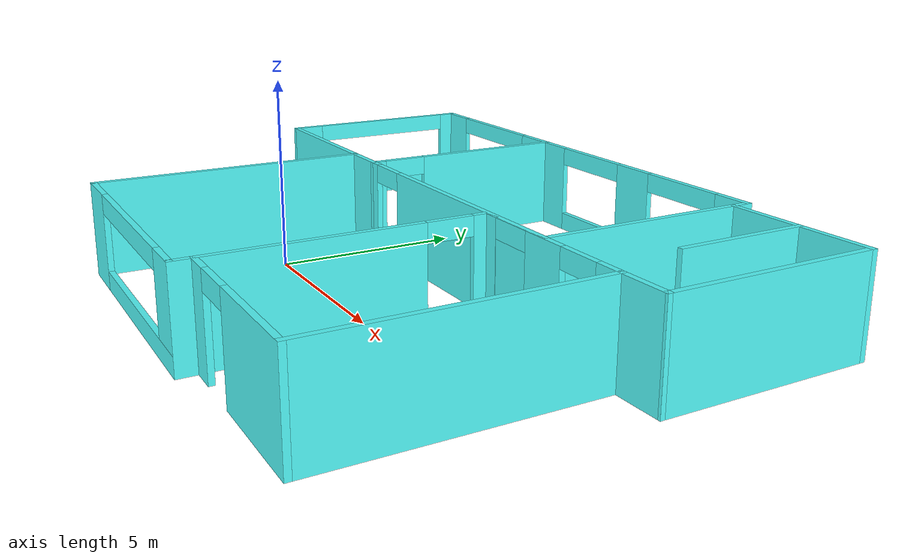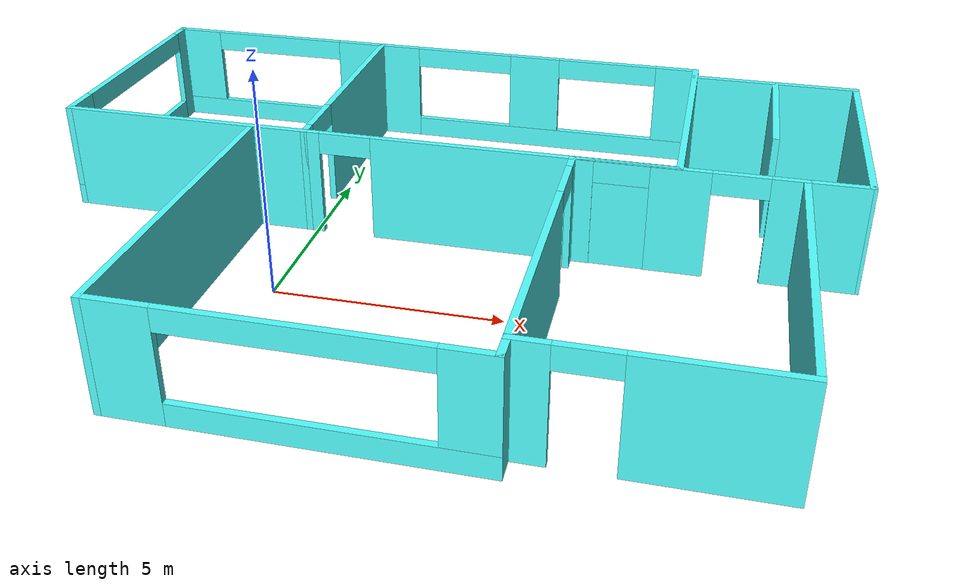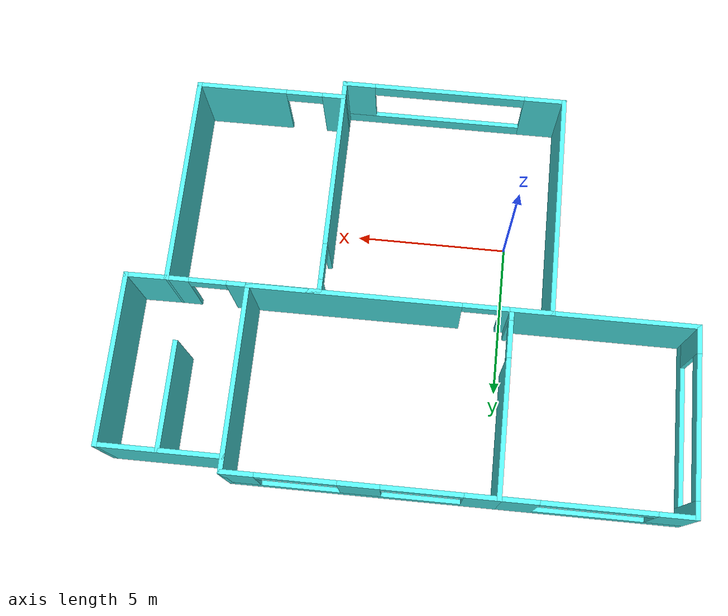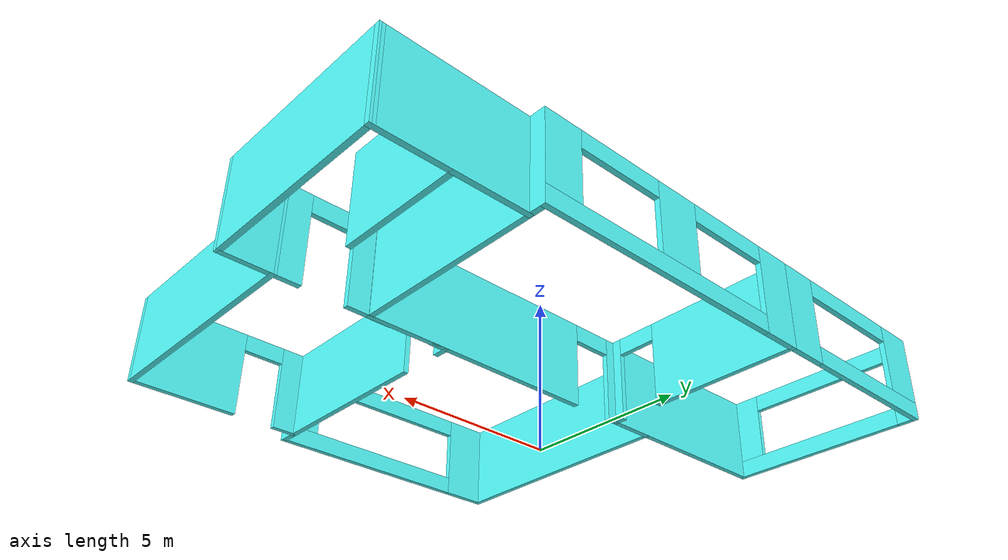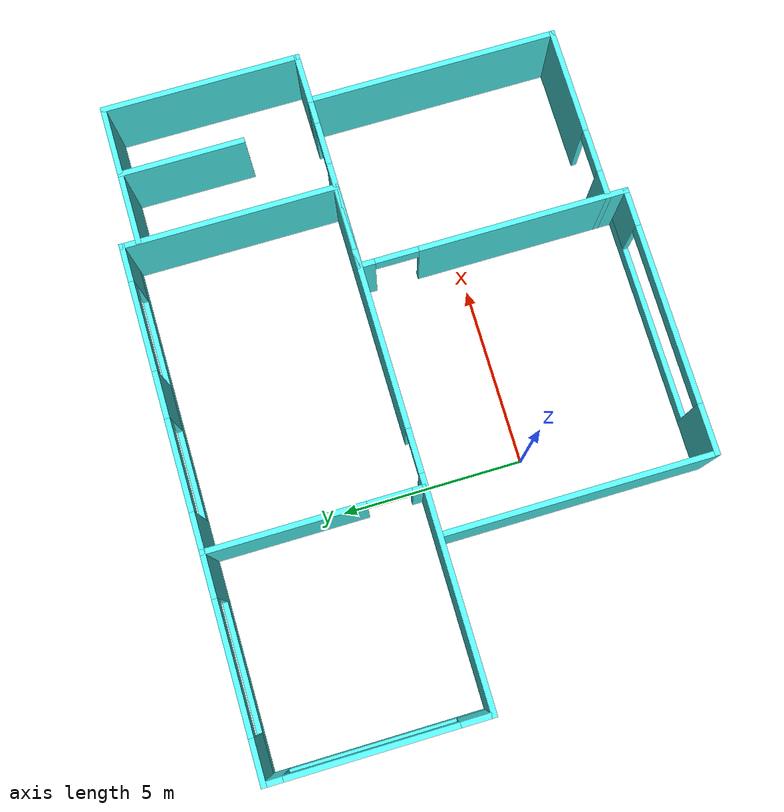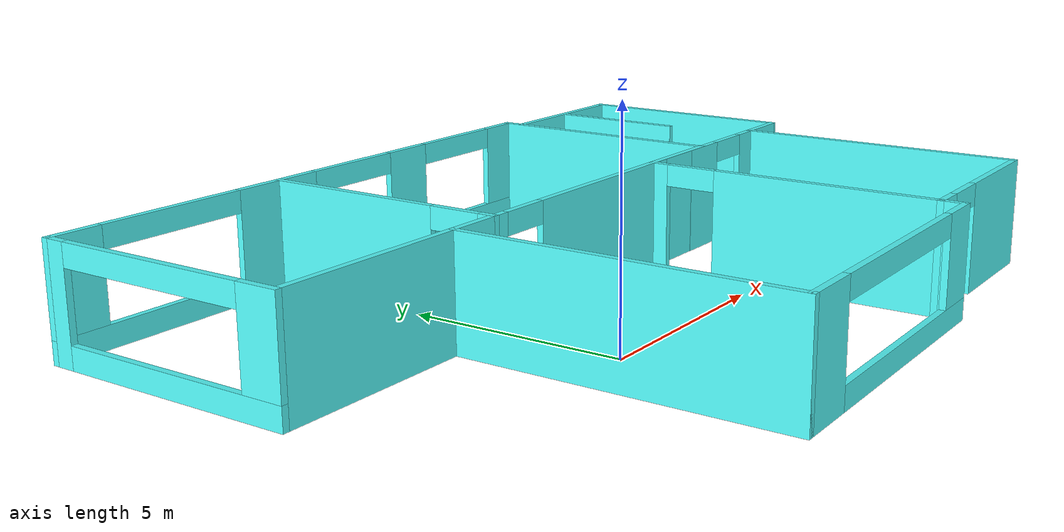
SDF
<?xml version='1.0'?>
<sdf version='1.6'>
  <model name='building'>
    <pose frame=''>2.97222 2.05646 0 0 -0 0</pose>
    <link name='Wall_1'>
      <pose frame=''>-9.03865 3.68146 0 0 0 -1.5708</pose>
      <visual name='Wall_1_Visual_0'>
        <pose frame=''>-2.71577 0 1.25 0 -0 0</pose>
        <geometry>
          <box>
            <size>0.568462 0.15 2.5</size>
          </box>
        </geometry>
        <material>
          <script>
            <uri>file://media/materials/scripts/gazebo.material</uri>
            <name>Gazebo/Grey</name>
          </script>
          <ambient>0.333333 1 1 1</ambient>
        </material>
        <meta>
          <layer>0</layer>
        </meta>
      </visual>
      <collision name='Wall_1_Collision_0'>
        <geometry>
          <box>
            <size>0.568462 0.15 2.5</size>
          </box>
        </geometry>
        <pose frame=''>-2.71577 0 1.25 0 -0 0</pose>
      </collision>
      <visual name='Wall_1_Visual_1'>
        <pose frame=''>0.284231 0 0.25 0 -0 0</pose>
        <geometry>
          <box>
            <size>5.43154 0.15 0.5</size>
          </box>
        </geometry>
        <material>
          <script>
            <uri>file://media/materials/scripts/gazebo.material</uri>
            <name>Gazebo/Grey</name>
          </script>
          <ambient>0.333333 1 1 1</ambient>
        </material>
        <meta>
          <layer>0</layer>
        </meta>
      </visual>
      <collision name='Wall_1_Collision_1'>
        <geometry>
          <box>
            <size>5.43154 0.15 0.5</size>
          </box>
        </geometry>
        <pose frame=''>0.284231 0 0.25 0 -0 0</pose>
      </collision>
      <visual name='Wall_1_Visual_2'>
        <pose frame=''>2.53423 0 1.5 0 -0 0</pose>
        <geometry>
          <box>
            <size>0.931538 0.15 2</size>
          </box>
        </geometry>
        <material>
          <script>
            <uri>file://media/materials/scripts/gazebo.material</uri>
            <name>Gazebo/Grey</name>
          </script>
          <ambient>0.333333 1 1 1</ambient>
        </material>
        <meta>
          <layer>0</layer>
        </meta>
      </visual>
      <collision name='Wall_1_Collision_2'>
        <geometry>
          <box>
            <size>0.931538 0.15 2</size>
          </box>
        </geometry>
        <pose frame=''>2.53423 0 1.5 0 -0 0</pose>
      </collision>
      <visual name='Wall_1_Visual_3'>
        <pose frame=''>-0.181538 0 2.25 0 -0 0</pose>
        <geometry>
          <box>
            <size>4.5 0.15 0.5</size>
          </box>
        </geometry>
        <material>
          <script>
            <uri>file://media/materials/scripts/gazebo.material</uri>
            <name>Gazebo/Grey</name>
          </script>
          <ambient>0.333333 1 1 1</ambient>
        </material>
        <meta>
          <layer>0</layer>
        </meta>
      </visual>
      <collision name='Wall_1_Collision_3'>
        <geometry>
          <box>
            <size>4.5 0.15 0.5</size>
          </box>
        </geometry>
        <pose frame=''>-0.181538 0 2.25 0 -0 0</pose>
      </collision>
    </link>
    <link name='Wall_12'>
      <collision name='Wall_12_Collision'>
        <geometry>
          <box>
            <size>7.5 0.15 2.5</size>
          </box>
        </geometry>
        <pose frame=''>0 0 1.25 0 -0 0</pose>
      </collision>
      <visual name='Wall_12_Visual'>
        <pose frame=''>0 0 1.25 0 -0 0</pose>
        <geometry>
          <box>
            <size>7.5 0.15 2.5</size>
          </box>
        </geometry>
        <material>
          <script>
            <uri>file://media/materials/scripts/gazebo.material</uri>
            <name>Gazebo/Grey</name>
          </script>
          <ambient>0.333333 1 1 1</ambient>
        </material>
        <meta>
          <layer>0</layer>
        </meta>
      </visual>
      <pose frame=''>-4.45822 -2.93146 0 0 0 -1.5708</pose>
    </link>
    <link name='Wall_14'>
      <pose frame=''>-0.783219 -6.60646 0 0 -0 0</pose>
      <visual name='Wall_14_Visual_0'>
        <pose frame=''>-3.04444 0 1.25 0 -0 0</pose>
        <geometry>
          <box>
            <size>1.41111 0.15 2.5</size>
          </box>
        </geometry>
        <material>
          <script>
            <uri>file://media/materials/scripts/gazebo.material</uri>
            <name>Gazebo/Grey</name>
          </script>
          <ambient>0.333333 1 1 1</ambient>
        </material>
        <meta>
          <layer>0</layer>
        </meta>
      </visual>
      <collision name='Wall_14_Collision_0'>
        <geometry>
          <box>
            <size>1.41111 0.15 2.5</size>
          </box>
        </geometry>
        <pose frame=''>-3.04444 0 1.25 0 -0 0</pose>
      </collision>
      <visual name='Wall_14_Visual_1'>
        <pose frame=''>0.705557 0 0.25 0 -0 0</pose>
        <geometry>
          <box>
            <size>6.08889 0.15 0.5</size>
          </box>
        </geometry>
        <material>
          <script>
            <uri>file://media/materials/scripts/gazebo.material</uri>
            <name>Gazebo/Grey</name>
          </script>
          <ambient>0.333333 1 1 1</ambient>
        </material>
        <meta>
          <layer>0</layer>
        </meta>
      </visual>
      <collision name='Wall_14_Collision_1'>
        <geometry>
          <box>
            <size>6.08889 0.15 0.5</size>
          </box>
        </geometry>
        <pose frame=''>0.705557 0 0.25 0 -0 0</pose>
      </collision>
      <visual name='Wall_14_Visual_2'>
        <pose frame=''>3.20556 0 1.5 0 -0 0</pose>
        <geometry>
          <box>
            <size>1.08889 0.15 2</size>
          </box>
        </geometry>
        <material>
          <script>
            <uri>file://media/materials/scripts/gazebo.material</uri>
            <name>Gazebo/Grey</name>
          </script>
          <ambient>0.333333 1 1 1</ambient>
        </material>
        <meta>
          <layer>0</layer>
        </meta>
      </visual>
      <collision name='Wall_14_Collision_2'>
        <geometry>
          <box>
            <size>1.08889 0.15 2</size>
          </box>
        </geometry>
        <pose frame=''>3.20556 0 1.5 0 -0 0</pose>
      </collision>
      <visual name='Wall_14_Visual_3'>
        <pose frame=''>0.161115 0 2.25 0 -0 0</pose>
        <geometry>
          <box>
            <size>5 0.15 0.5</size>
          </box>
        </geometry>
        <material>
          <script>
            <uri>file://media/materials/scripts/gazebo.material</uri>
            <name>Gazebo/Grey</name>
          </script>
          <ambient>0.333333 1 1 1</ambient>
        </material>
        <meta>
          <layer>0</layer>
        </meta>
      </visual>
      <collision name='Wall_14_Collision_3'>
        <geometry>
          <box>
            <size>5 0.15 0.5</size>
          </box>
        </geometry>
        <pose frame=''>0.161115 0 2.25 0 -0 0</pose>
      </collision>
    </link>
    <link name='Wall_15'>
      <pose frame=''>2.89178 -2.93146 0 0 -0 1.5708</pose>
      <visual name='Wall_15_Visual_0'>
        <pose frame=''>-0.841152 0 1.25 0 -0 0</pose>
        <geometry>
          <box>
            <size>5.81769 0.15 2.5</size>
          </box>
        </geometry>
        <material>
          <script>
            <uri>file://media/materials/scripts/gazebo.material</uri>
            <name>Gazebo/Grey</name>
          </script>
          <ambient>0.333333 1 1 1</ambient>
        </material>
        <meta>
          <layer>0</layer>
        </meta>
      </visual>
      <collision name='Wall_15_Collision_0'>
        <geometry>
          <box>
            <size>5.81769 0.15 2.5</size>
          </box>
        </geometry>
        <pose frame=''>-0.841152 0 1.25 0 -0 0</pose>
      </collision>
      <visual name='Wall_15_Visual_1'>
        <pose frame=''>3.50885 0 1.25 0 -0 0</pose>
        <geometry>
          <box>
            <size>0.482305 0.15 2.5</size>
          </box>
        </geometry>
        <material>
          <script>
            <uri>file://media/materials/scripts/gazebo.material</uri>
            <name>Gazebo/Grey</name>
          </script>
          <ambient>0.333333 1 1 1</ambient>
        </material>
        <meta>
          <layer>0</layer>
        </meta>
      </visual>
      <collision name='Wall_15_Collision_1'>
        <geometry>
          <box>
            <size>0.482305 0.15 2.5</size>
          </box>
        </geometry>
        <pose frame=''>3.50885 0 1.25 0 -0 0</pose>
      </collision>
      <visual name='Wall_15_Visual_2'>
        <pose frame=''>2.6677 0 2.25 0 -0 0</pose>
        <geometry>
          <box>
            <size>1.2 0.15 0.5</size>
          </box>
        </geometry>
        <material>
          <script>
            <uri>file://media/materials/scripts/gazebo.material</uri>
            <name>Gazebo/Grey</name>
          </script>
          <ambient>0.333333 1 1 1</ambient>
        </material>
        <meta>
          <layer>0</layer>
        </meta>
      </visual>
      <collision name='Wall_15_Collision_2'>
        <geometry>
          <box>
            <size>1.2 0.15 0.5</size>
          </box>
        </geometry>
        <pose frame=''>2.6677 0 2.25 0 -0 0</pose>
      </collision>
    </link>
    <link name='Wall_17'>
      <pose frame=''>5.31678 0.743537 0 0 -0 0</pose>
      <visual name='Wall_17_Visual_0'>
        <pose frame=''>-2.23135 0 1.25 0 -0 0</pose>
        <geometry>
          <box>
            <size>0.537309 0.15 2.5</size>
          </box>
        </geometry>
        <material>
          <script>
            <uri>file://media/materials/scripts/gazebo.material</uri>
            <name>Gazebo/Grey</name>
          </script>
          <ambient>0.333333 1 1 1</ambient>
        </material>
        <meta>
          <layer>0</layer>
        </meta>
      </visual>
      <collision name='Wall_17_Collision_0'>
        <geometry>
          <box>
            <size>0.537309 0.15 2.5</size>
          </box>
        </geometry>
        <pose frame=''>-2.23135 0 1.25 0 -0 0</pose>
      </collision>
      <visual name='Wall_17_Visual_1'>
        <pose frame=''>-0.120616 0 1.25 0 -0 0</pose>
        <geometry>
          <box>
            <size>1.28415 0.15 2.5</size>
          </box>
        </geometry>
        <material>
          <script>
            <uri>file://media/materials/scripts/gazebo.material</uri>
            <name>Gazebo/Grey</name>
          </script>
          <ambient>0.333333 1 1 1</ambient>
        </material>
        <meta>
          <layer>0</layer>
        </meta>
      </visual>
      <collision name='Wall_17_Collision_1'>
        <geometry>
          <box>
            <size>1.28415 0.15 2.5</size>
          </box>
        </geometry>
        <pose frame=''>-0.120616 0 1.25 0 -0 0</pose>
      </collision>
      <visual name='Wall_17_Visual_2'>
        <pose frame=''>2.11073 0 1.25 0 -0 0</pose>
        <geometry>
          <box>
            <size>0.778542 0.15 2.5</size>
          </box>
        </geometry>
        <material>
          <script>
            <uri>file://media/materials/scripts/gazebo.material</uri>
            <name>Gazebo/Grey</name>
          </script>
          <ambient>0.333333 1 1 1</ambient>
        </material>
        <meta>
          <layer>0</layer>
        </meta>
      </visual>
      <collision name='Wall_17_Collision_2'>
        <geometry>
          <box>
            <size>0.778542 0.15 2.5</size>
          </box>
        </geometry>
        <pose frame=''>2.11073 0 1.25 0 -0 0</pose>
      </collision>
      <visual name='Wall_17_Visual_3'>
        <pose frame=''>-1.36269 0 2.25 0 -0 0</pose>
        <geometry>
          <box>
            <size>1.2 0.15 0.5</size>
          </box>
        </geometry>
        <material>
          <script>
            <uri>file://media/materials/scripts/gazebo.material</uri>
            <name>Gazebo/Grey</name>
          </script>
          <ambient>0.333333 1 1 1</ambient>
        </material>
        <meta>
          <layer>0</layer>
        </meta>
      </visual>
      <collision name='Wall_17_Collision_3'>
        <geometry>
          <box>
            <size>1.2 0.15 0.5</size>
          </box>
        </geometry>
        <pose frame=''>-1.36269 0 2.25 0 -0 0</pose>
      </collision>
      <visual name='Wall_17_Visual_4'>
        <pose frame=''>1.12146 0 2.25 0 -0 0</pose>
        <geometry>
          <box>
            <size>1.2 0.15 0.5</size>
          </box>
        </geometry>
        <material>
          <script>
            <uri>file://media/materials/scripts/gazebo.material</uri>
            <name>Gazebo/Grey</name>
          </script>
          <ambient>0.333333 1 1 1</ambient>
        </material>
        <meta>
          <layer>0</layer>
        </meta>
      </visual>
      <collision name='Wall_17_Collision_4'>
        <geometry>
          <box>
            <size>1.2 0.15 0.5</size>
          </box>
        </geometry>
        <pose frame=''>1.12146 0 2.25 0 -0 0</pose>
      </collision>
    </link>
    <link name='Wall_18'>
      <collision name='Wall_18_Collision'>
        <geometry>
          <box>
            <size>7 0.15 2.5</size>
          </box>
        </geometry>
        <pose frame=''>0 0 1.25 0 -0 0</pose>
      </collision>
      <visual name='Wall_18_Visual'>
        <pose frame=''>0 0 1.25 0 -0 0</pose>
        <geometry>
          <box>
            <size>7 0.15 2.5</size>
          </box>
        </geometry>
        <material>
          <script>
            <uri>file://media/materials/scripts/gazebo.material</uri>
            <name>Gazebo/Grey</name>
          </script>
          <ambient>0.333333 1 1 1</ambient>
        </material>
        <meta>
          <layer>0</layer>
        </meta>
      </visual>
      <pose frame=''>7.74178 -2.68146 0 0 0 -1.5708</pose>
    </link>
    <link name='Wall_19'>
      <pose frame=''>5.31678 -6.10646 0 0 -0 3.14159</pose>
      <visual name='Wall_19_Visual_0'>
        <pose frame=''>-0.997186 0 1.25 0 -0 0</pose>
        <geometry>
          <box>
            <size>3.00563 0.15 2.5</size>
          </box>
        </geometry>
        <material>
          <script>
            <uri>file://media/materials/scripts/gazebo.material</uri>
            <name>Gazebo/Grey</name>
          </script>
          <ambient>0.333333 1 1 1</ambient>
        </material>
        <meta>
          <layer>0</layer>
        </meta>
      </visual>
      <collision name='Wall_19_Collision_0'>
        <geometry>
          <box>
            <size>3.00563 0.15 2.5</size>
          </box>
        </geometry>
        <pose frame=''>-0.997186 0 1.25 0 -0 0</pose>
      </collision>
      <visual name='Wall_19_Visual_1'>
        <pose frame=''>2.10281 0 1.25 0 -0 0</pose>
        <geometry>
          <box>
            <size>0.794371 0.15 2.5</size>
          </box>
        </geometry>
        <material>
          <script>
            <uri>file://media/materials/scripts/gazebo.material</uri>
            <name>Gazebo/Grey</name>
          </script>
          <ambient>0.333333 1 1 1</ambient>
        </material>
        <meta>
          <layer>0</layer>
        </meta>
      </visual>
      <collision name='Wall_19_Collision_1'>
        <geometry>
          <box>
            <size>0.794371 0.15 2.5</size>
          </box>
        </geometry>
        <pose frame=''>2.10281 0 1.25 0 -0 0</pose>
      </collision>
      <visual name='Wall_19_Visual_2'>
        <pose frame=''>1.10563 0 2.25 0 -0 0</pose>
        <geometry>
          <box>
            <size>1.2 0.15 0.5</size>
          </box>
        </geometry>
        <material>
          <script>
            <uri>file://media/materials/scripts/gazebo.material</uri>
            <name>Gazebo/Grey</name>
          </script>
          <ambient>0.333333 1 1 1</ambient>
        </material>
        <meta>
          <layer>0</layer>
        </meta>
      </visual>
      <collision name='Wall_19_Collision_2'>
        <geometry>
          <box>
            <size>1.2 0.15 0.5</size>
          </box>
        </geometry>
        <pose frame=''>1.10563 0 2.25 0 -0 0</pose>
      </collision>
    </link>
    <link name='Wall_2'>
      <collision name='Wall_2_Collision'>
        <geometry>
          <box>
            <size>6 0.15 2.5</size>
          </box>
        </geometry>
        <pose frame=''>0 0 1.25 0 -0 0</pose>
      </collision>
      <visual name='Wall_2_Visual'>
        <pose frame=''>0 0 1.25 0 -0 0</pose>
        <geometry>
          <box>
            <size>6 0.15 2.5</size>
          </box>
        </geometry>
        <material>
          <script>
            <uri>file://media/materials/scripts/gazebo.material</uri>
            <name>Gazebo/Grey</name>
          </script>
          <ambient>0.333333 1 1 1</ambient>
        </material>
        <meta>
          <layer>0</layer>
        </meta>
      </visual>
      <pose frame=''>-6.11365 0.756463 0 0 -0 0</pose>
    </link>
    <link name='Wall_3'>
      <pose frame=''>-3.18865 3.68146 0 0 -0 1.5708</pose>
      <visual name='Wall_3_Visual_0'>
        <pose frame=''>-2.78821 0 1.25 0 -0 0</pose>
        <geometry>
          <box>
            <size>0.423576 0.15 2.5</size>
          </box>
        </geometry>
        <material>
          <script>
            <uri>file://media/materials/scripts/gazebo.material</uri>
            <name>Gazebo/Grey</name>
          </script>
          <ambient>0.333333 1 1 1</ambient>
        </material>
        <meta>
          <layer>0</layer>
        </meta>
      </visual>
      <collision name='Wall_3_Collision_0'>
        <geometry>
          <box>
            <size>0.423576 0.15 2.5</size>
          </box>
        </geometry>
        <pose frame=''>-2.78821 0 1.25 0 -0 0</pose>
      </collision>
      <visual name='Wall_3_Visual_1'>
        <pose frame=''>0.811788 0 1.25 0 -0 0</pose>
        <geometry>
          <box>
            <size>4.37642 0.15 2.5</size>
          </box>
        </geometry>
        <material>
          <script>
            <uri>file://media/materials/scripts/gazebo.material</uri>
            <name>Gazebo/Grey</name>
          </script>
          <ambient>0.333333 1 1 1</ambient>
        </material>
        <meta>
          <layer>0</layer>
        </meta>
      </visual>
      <collision name='Wall_3_Collision_1'>
        <geometry>
          <box>
            <size>4.37642 0.15 2.5</size>
          </box>
        </geometry>
        <pose frame=''>0.811788 0 1.25 0 -0 0</pose>
      </collision>
      <visual name='Wall_3_Visual_2'>
        <pose frame=''>-1.97642 0 2.25 0 -0 0</pose>
        <geometry>
          <box>
            <size>1.2 0.15 0.5</size>
          </box>
        </geometry>
        <material>
          <script>
            <uri>file://media/materials/scripts/gazebo.material</uri>
            <name>Gazebo/Grey</name>
          </script>
          <ambient>0.333333 1 1 1</ambient>
        </material>
        <meta>
          <layer>0</layer>
        </meta>
      </visual>
      <collision name='Wall_3_Collision_2'>
        <geometry>
          <box>
            <size>1.2 0.15 0.5</size>
          </box>
        </geometry>
        <pose frame=''>-1.97642 0 2.25 0 -0 0</pose>
      </collision>
    </link>
    <link name='Wall_36'>
      <collision name='Wall_36_Collision'>
        <geometry>
          <box>
            <size>4 0.15 2.5</size>
          </box>
        </geometry>
        <pose frame=''>0 0 1.25 0 -0 0</pose>
      </collision>
      <visual name='Wall_36_Visual'>
        <pose frame=''>0 0 1.25 0 -0 0</pose>
        <geometry>
          <box>
            <size>4 0.15 2.5</size>
          </box>
        </geometry>
        <material>
          <script>
            <uri>file://media/materials/scripts/gazebo.material</uri>
            <name>Gazebo/Grey</name>
          </script>
          <ambient>0.333333 1 1 1</ambient>
        </material>
        <meta>
          <layer>0</layer>
        </meta>
      </visual>
      <pose frame=''>7.11291 6.15942 0 0 -0 6.1e-05</pose>
    </link>
    <link name='Wall_37'>
      <collision name='Wall_37_Collision'>
        <geometry>
          <box>
            <size>5.556 0.15 2.5</size>
          </box>
        </geometry>
        <pose frame=''>0 0 1.25 0 -0 0</pose>
      </collision>
      <visual name='Wall_37_Visual'>
        <pose frame=''>0 0 1.25 0 -0 0</pose>
        <geometry>
          <box>
            <size>5.556 0.15 2.5</size>
          </box>
        </geometry>
        <material>
          <script>
            <uri>file://media/materials/scripts/gazebo.material</uri>
            <name>Gazebo/Grey</name>
          </script>
          <ambient>0.333333 1 1 1</ambient>
        </material>
        <meta>
          <layer>0</layer>
        </meta>
      </visual>
      <pose frame=''>9.03778 3.45654 0 0 0 -1.5708</pose>
    </link>
    <link name='Wall_38'>
      <collision name='Wall_38_Collision'>
        <geometry>
          <box>
            <size>1.44662 0.15 2.5</size>
          </box>
        </geometry>
        <pose frame=''>0 0 1.25 0 -0 0</pose>
      </collision>
      <visual name='Wall_38_Visual'>
        <pose frame=''>0 0 1.25 0 -0 0</pose>
        <geometry>
          <box>
            <size>1.44662 0.15 2.5</size>
          </box>
        </geometry>
        <material>
          <script>
            <uri>file://media/materials/scripts/gazebo.material</uri>
            <name>Gazebo/Grey</name>
          </script>
          <ambient>0.333333 1 1 1</ambient>
        </material>
        <meta>
          <layer>0</layer>
        </meta>
      </visual>
      <pose frame=''>8.38978 0.748538 0 0 0 -3.13388</pose>
    </link>
    <link name='Wall_4'>
      <pose frame=''>-6.11365 6.60646 0 0 -0 3.14159</pose>
      <visual name='Wall_4_Visual_0'>
        <pose frame=''>-2.35852 0 1.25 0 -0 0</pose>
        <geometry>
          <box>
            <size>1.28296 0.15 2.5</size>
          </box>
        </geometry>
        <material>
          <script>
            <uri>file://media/materials/scripts/gazebo.material</uri>
            <name>Gazebo/Grey</name>
          </script>
          <ambient>0.333333 1 1 1</ambient>
        </material>
        <meta>
          <layer>0</layer>
        </meta>
      </visual>
      <collision name='Wall_4_Collision_0'>
        <geometry>
          <box>
            <size>1.28296 0.15 2.5</size>
          </box>
        </geometry>
        <pose frame=''>-2.35852 0 1.25 0 -0 0</pose>
      </collision>
      <visual name='Wall_4_Visual_1'>
        <pose frame=''>0.641479 0 0.25 0 -0 0</pose>
        <geometry>
          <box>
            <size>4.71704 0.15 0.5</size>
          </box>
        </geometry>
        <material>
          <script>
            <uri>file://media/materials/scripts/gazebo.material</uri>
            <name>Gazebo/Grey</name>
          </script>
          <ambient>0.333333 1 1 1</ambient>
        </material>
        <meta>
          <layer>0</layer>
        </meta>
      </visual>
      <collision name='Wall_4_Collision_1'>
        <geometry>
          <box>
            <size>4.71704 0.15 0.5</size>
          </box>
        </geometry>
        <pose frame=''>0.641479 0 0.25 0 -0 0</pose>
      </collision>
      <visual name='Wall_4_Visual_2'>
        <pose frame=''>2.39148 0 1.5 0 -0 0</pose>
        <geometry>
          <box>
            <size>1.21704 0.15 2</size>
          </box>
        </geometry>
        <material>
          <script>
            <uri>file://media/materials/scripts/gazebo.material</uri>
            <name>Gazebo/Grey</name>
          </script>
          <ambient>0.333333 1 1 1</ambient>
        </material>
        <meta>
          <layer>0</layer>
        </meta>
      </visual>
      <collision name='Wall_4_Collision_2'>
        <geometry>
          <box>
            <size>1.21704 0.15 2</size>
          </box>
        </geometry>
        <pose frame=''>2.39148 0 1.5 0 -0 0</pose>
      </collision>
      <visual name='Wall_4_Visual_3'>
        <pose frame=''>0.032959 0 2.25 0 -0 0</pose>
        <geometry>
          <box>
            <size>3.5 0.15 0.5</size>
          </box>
        </geometry>
        <material>
          <script>
            <uri>file://media/materials/scripts/gazebo.material</uri>
            <name>Gazebo/Grey</name>
          </script>
          <ambient>0.333333 1 1 1</ambient>
        </material>
        <meta>
          <layer>0</layer>
        </meta>
      </visual>
      <collision name='Wall_4_Collision_3'>
        <geometry>
          <box>
            <size>3.5 0.15 0.5</size>
          </box>
        </geometry>
        <pose frame=''>0.032959 0 2.25 0 -0 0</pose>
      </collision>
    </link>
    <link name='Wall_40'>
      <collision name='Wall_40_Collision'>
        <geometry>
          <box>
            <size>3.5 0.15 2.5</size>
          </box>
        </geometry>
        <pose frame=''>0 0 1.25 0 -0 0</pose>
      </collision>
      <visual name='Wall_40_Visual'>
        <pose frame=''>0 0 1.25 0 -0 0</pose>
        <geometry>
          <box>
            <size>3.5 0.15 2.5</size>
          </box>
        </geometry>
        <material>
          <script>
            <uri>file://media/materials/scripts/gazebo.material</uri>
            <name>Gazebo/Grey</name>
          </script>
          <ambient>0.333333 1 1 1</ambient>
        </material>
        <meta>
          <layer>0</layer>
        </meta>
      </visual>
      <pose frame=''>7.12985 4.4843 0 0 0 -1.5708</pose>
    </link>
    <link name='Wall_6'>
      <pose frame=''>0.986353 6.60646 0 0 -0 0</pose>
      <visual name='Wall_6_Visual_0'>
        <pose frame=''>-3.68572 0 1.25 0 -0 0</pose>
        <geometry>
          <box>
            <size>1.12856 0.15 2.5</size>
          </box>
        </geometry>
        <material>
          <script>
            <uri>file://media/materials/scripts/gazebo.material</uri>
            <name>Gazebo/Grey</name>
          </script>
          <ambient>0.333333 1 1 1</ambient>
        </material>
        <meta>
          <layer>0</layer>
        </meta>
      </visual>
      <collision name='Wall_6_Collision_0'>
        <geometry>
          <box>
            <size>1.12856 0.15 2.5</size>
          </box>
        </geometry>
        <pose frame=''>-3.68572 0 1.25 0 -0 0</pose>
      </collision>
      <visual name='Wall_6_Visual_1'>
        <pose frame=''>0.56428 0 0.25 0 -0 0</pose>
        <geometry>
          <box>
            <size>7.37144 0.15 0.5</size>
          </box>
        </geometry>
        <material>
          <script>
            <uri>file://media/materials/scripts/gazebo.material</uri>
            <name>Gazebo/Grey</name>
          </script>
          <ambient>0.333333 1 1 1</ambient>
        </material>
        <meta>
          <layer>0</layer>
        </meta>
      </visual>
      <collision name='Wall_6_Collision_1'>
        <geometry>
          <box>
            <size>7.37144 0.15 0.5</size>
          </box>
        </geometry>
        <pose frame=''>0.56428 0 0.25 0 -0 0</pose>
      </collision>
      <visual name='Wall_6_Visual_2'>
        <pose frame=''>0.025155 0 1.5 0 -0 0</pose>
        <geometry>
          <box>
            <size>1.29319 0.15 2</size>
          </box>
        </geometry>
        <material>
          <script>
            <uri>file://media/materials/scripts/gazebo.material</uri>
            <name>Gazebo/Grey</name>
          </script>
          <ambient>0.333333 1 1 1</ambient>
        </material>
        <meta>
          <layer>0</layer>
        </meta>
      </visual>
      <collision name='Wall_6_Collision_2'>
        <geometry>
          <box>
            <size>1.29319 0.15 2</size>
          </box>
        </geometry>
        <pose frame=''>0.025155 0 1.5 0 -0 0</pose>
      </collision>
      <visual name='Wall_6_Visual_3'>
        <pose frame=''>3.71088 0 1.5 0 -0 0</pose>
        <geometry>
          <box>
            <size>1.07825 0.15 2</size>
          </box>
        </geometry>
        <material>
          <script>
            <uri>file://media/materials/scripts/gazebo.material</uri>
            <name>Gazebo/Grey</name>
          </script>
          <ambient>0.333333 1 1 1</ambient>
        </material>
        <meta>
          <layer>0</layer>
        </meta>
      </visual>
      <collision name='Wall_6_Collision_3'>
        <geometry>
          <box>
            <size>1.07825 0.15 2</size>
          </box>
        </geometry>
        <pose frame=''>3.71088 0 1.5 0 -0 0</pose>
      </collision>
      <visual name='Wall_6_Visual_4'>
        <pose frame=''>-1.87144 0 2.25 0 -0 0</pose>
        <geometry>
          <box>
            <size>2.5 0.15 0.5</size>
          </box>
        </geometry>
        <material>
          <script>
            <uri>file://media/materials/scripts/gazebo.material</uri>
            <name>Gazebo/Grey</name>
          </script>
          <ambient>0.333333 1 1 1</ambient>
        </material>
        <meta>
          <layer>0</layer>
        </meta>
      </visual>
      <collision name='Wall_6_Collision_4'>
        <geometry>
          <box>
            <size>2.5 0.15 0.5</size>
          </box>
        </geometry>
        <pose frame=''>-1.87144 0 2.25 0 -0 0</pose>
      </collision>
      <visual name='Wall_6_Visual_5'>
        <pose frame=''>1.92175 0 2.25 0 -0 0</pose>
        <geometry>
          <box>
            <size>2.5 0.15 0.5</size>
          </box>
        </geometry>
        <material>
          <script>
            <uri>file://media/materials/scripts/gazebo.material</uri>
            <name>Gazebo/Grey</name>
          </script>
          <ambient>0.333333 1 1 1</ambient>
        </material>
        <meta>
          <layer>0</layer>
        </meta>
      </visual>
      <collision name='Wall_6_Collision_5'>
        <geometry>
          <box>
            <size>2.5 0.15 0.5</size>
          </box>
        </geometry>
        <pose frame=''>1.92175 0 2.25 0 -0 0</pose>
      </collision>
    </link>
    <link name='Wall_7'>
      <collision name='Wall_7_Collision'>
        <geometry>
          <box>
            <size>6 0.15 2.5</size>
          </box>
        </geometry>
        <pose frame=''>0 0 1.25 0 -0 0</pose>
      </collision>
      <visual name='Wall_7_Visual'>
        <pose frame=''>0 0 1.25 0 -0 0</pose>
        <geometry>
          <box>
            <size>6 0.15 2.5</size>
          </box>
        </geometry>
        <material>
          <script>
            <uri>file://media/materials/scripts/gazebo.material</uri>
            <name>Gazebo/Grey</name>
          </script>
          <ambient>0.333333 1 1 1</ambient>
        </material>
        <meta>
          <layer>0</layer>
        </meta>
      </visual>
      <pose frame=''>5.16135 3.68146 0 0 0 -1.5708</pose>
    </link>
    <link name='Wall_8'>
      <pose frame=''>0.986353 0.756463 0 0 -0 3.14159</pose>
      <visual name='Wall_8_Visual_0'>
        <pose frame=''>-0.818423 0 1.25 0 -0 0</pose>
        <geometry>
          <box>
            <size>6.86315 0.15 2.5</size>
          </box>
        </geometry>
        <material>
          <script>
            <uri>file://media/materials/scripts/gazebo.material</uri>
            <name>Gazebo/Grey</name>
          </script>
          <ambient>0.333333 1 1 1</ambient>
        </material>
        <meta>
          <layer>0</layer>
        </meta>
      </visual>
      <collision name='Wall_8_Collision_0'>
        <geometry>
          <box>
            <size>6.86315 0.15 2.5</size>
          </box>
        </geometry>
        <pose frame=''>-0.818423 0 1.25 0 -0 0</pose>
      </collision>
      <visual name='Wall_8_Visual_1'>
        <pose frame=''>4.03158 0 1.25 0 -0 0</pose>
        <geometry>
          <box>
            <size>0.436846 0.15 2.5</size>
          </box>
        </geometry>
        <material>
          <script>
            <uri>file://media/materials/scripts/gazebo.material</uri>
            <name>Gazebo/Grey</name>
          </script>
          <ambient>0.333333 1 1 1</ambient>
        </material>
        <meta>
          <layer>0</layer>
        </meta>
      </visual>
      <collision name='Wall_8_Collision_1'>
        <geometry>
          <box>
            <size>0.436846 0.15 2.5</size>
          </box>
        </geometry>
        <pose frame=''>4.03158 0 1.25 0 -0 0</pose>
      </collision>
      <visual name='Wall_8_Visual_2'>
        <pose frame=''>3.21315 0 2.25 0 -0 0</pose>
        <geometry>
          <box>
            <size>1.2 0.15 0.5</size>
          </box>
        </geometry>
        <material>
          <script>
            <uri>file://media/materials/scripts/gazebo.material</uri>
            <name>Gazebo/Grey</name>
          </script>
          <ambient>0.333333 1 1 1</ambient>
        </material>
        <meta>
          <layer>0</layer>
        </meta>
      </visual>
      <collision name='Wall_8_Collision_2'>
        <geometry>
          <box>
            <size>1.2 0.15 0.5</size>
          </box>
        </geometry>
        <pose frame=''>3.21315 0 2.25 0 -0 0</pose>
      </collision>
    </link>
    <static>1</static>
  </model>
</sdf>
